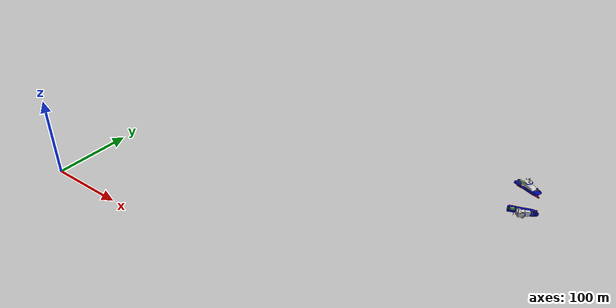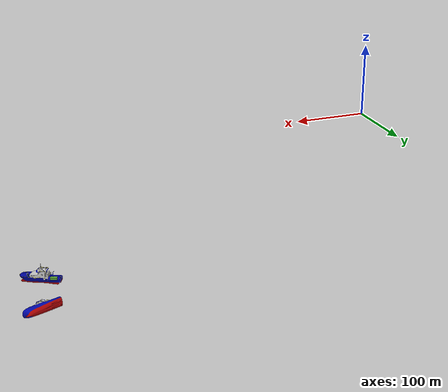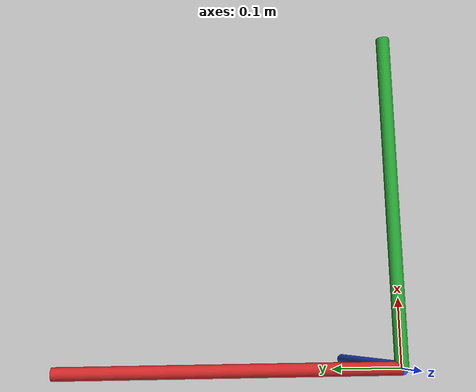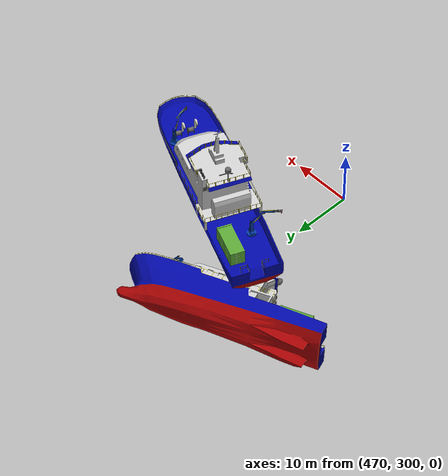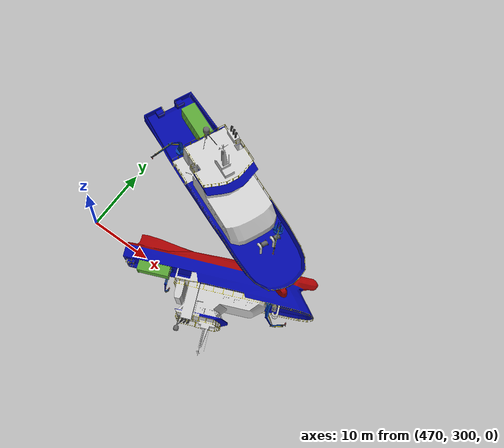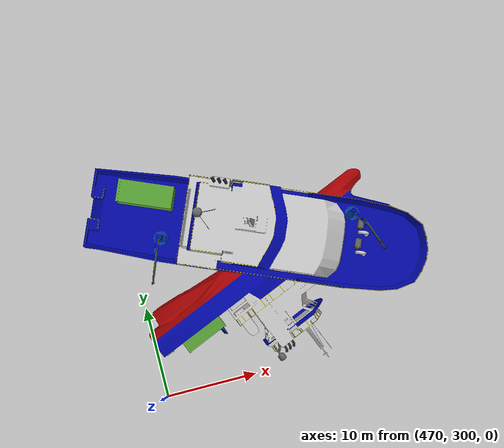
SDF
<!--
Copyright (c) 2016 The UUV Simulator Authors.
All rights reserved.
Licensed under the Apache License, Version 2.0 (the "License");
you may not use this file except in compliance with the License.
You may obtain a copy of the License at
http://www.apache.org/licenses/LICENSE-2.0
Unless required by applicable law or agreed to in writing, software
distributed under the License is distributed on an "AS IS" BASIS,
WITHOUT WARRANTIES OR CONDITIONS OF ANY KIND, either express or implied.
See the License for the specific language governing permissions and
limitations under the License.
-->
<sdf version="1.4">
 <world name="mangalia_manipulation">
  <physics name="default_physics" default="true" type="ode">
   <max_step_size>0.002</max_step_size>
   <real_time_factor>1</real_time_factor>
   <real_time_update_rate>500</real_time_update_rate>
   <ode><solver><type>quick</type><iters>50</iters><sor>0.7</sor></solver></ode>
  </physics>
  <scene>
   <ambient>0.01 0.01 0.01 1.0</ambient>
   <sky><clouds><speed>12</speed></clouds></sky>
   <shadows>1</shadows>
  </scene>
  <spherical_coordinates>
   <latitude_deg>43.802911</latitude_deg>
   <longitude_deg>28.591915</longitude_deg>
  </spherical_coordinates>
  <light type="directional" name="sun1">
   <pose>50 0 20 0 0 0</pose>
   <diffuse>1 1 1 1</diffuse>
   <specular>.1 .1 .1 1</specular>
   <direction>0.3 0.3 -1</direction>
  </light>
  <light type="directional" name="sun_diffuse_1">
   <pose>0 0 800 0 0 0</pose>
   <diffuse>0.6 0.6 0.6 1</diffuse>
   <specular>0 0 0 1</specular>
   <direction>-0.3 -0.3 -1</direction>
  </light>
  <light type="directional" name="sun_diffuse_2">
   <pose>-2000 50 800 0 0 0</pose>
   <diffuse>0.6 0.6 0.6 1</diffuse>
   <specular>0 0 0 1</specular>
   <direction>-0.3 -0.3 -1</direction>
  </light>
  <include><uri>model://ned_frame</uri></include>
  <include>
   <uri>model://aurora_static</uri>
   <pose>484.0 315.0 0.0 0.0 0.0 -0.4</pose>
   <name>aurora_swimming</name>
  </include>
  <include>
   <uri>model://aurora_static</uri>
   <pose>484.0 315.0 -30.0 1.7 0 0.4</pose>
   <name>aurora_sunken</name>
  </include>
  <plugin name="underwater_current_plugin" filename="libuuv_underwater_current_ros_plugin.so">
   <namespace>hydrodynamics</namespace>
   <constant_current>
    <topic>current_velocity</topic>
    <velocity><mean>0</mean><min>0</min><max>5</max><mu>0.0</mu><noiseAmp>0.0</noiseAmp></velocity>
    <horizontal_angle>
     <mean>0</mean>
     <min>-3.141592653589793238</min>
     <max>3.141592653589793238</max>
     <mu>0.0</mu>
     <noiseAmp>0.0</noiseAmp>
    </horizontal_angle>
    <vertical_angle>
     <mean>0</mean>
     <min>-3.141592653589793238</min>
     <max>3.141592653589793238</max>
     <mu>0.0</mu>
     <noiseAmp>0.0</noiseAmp>
    </vertical_angle>
   </constant_current>
  </plugin>
  <plugin name="sc_interface" filename="libuuv_sc_ros_interface_plugin.so"/>
 </world>
</sdf>

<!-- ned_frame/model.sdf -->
<sdf version='1.5'>
    <model name="world_aaa">

      <pose>0 0 0 0 0 0</pose>
      <static>true</static>

      <link name="world_aaa">
        <gravity>0</gravity>
        <pose>0 0 0 3.14159265359 0 1.5707963267948966</pose>

        <visual name="N_visual">
          <pose>0.25 0 0 1.5707963267948966 0 1.5707963267948966</pose>
          <geometry>
            <cylinder>
              <radius>0.01</radius>
              <length>0.5</length>
            </cylinder>
          </geometry>
          <material>
            <script>
              <uri>file://media/materials/scripts/gazebo.material</uri>
              <name>Gazebo/Red</name>
            </script>
          </material>
        </visual>

        <visual name="E_visual">
          <pose>0 0.25 0 1.5707963267948966 0 0</pose>
          <geometry>
            <cylinder>
              <radius>0.01</radius>
              <length>0.5</length>
            </cylinder>
          </geometry>
          <material>
            <script>
              <uri>file://media/materials/scripts/gazebo.material</uri>
              <name>Gazebo/Green</name>
            </script>
          </material>
        </visual>

        <visual name="D_visual">
          <pose>0 0 0.25 0 0 0</pose>
          <geometry>
            <cylinder>
              <radius>0.01</radius>
              <length>0.5</length>
            </cylinder>
          </geometry>
          <material>
            <script>
              <uri>file://media/materials/scripts/gazebo.material</uri>
              <name>Gazebo/Blue</name>
            </script>
          </material>
        </visual>
      </link>
    </model>
</sdf>

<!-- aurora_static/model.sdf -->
<sdf version="1.5">
  <model name="aurora">
    <static>true</static>
    <link name="link">
      <collision name="aurora_collision">
        <pose>0 0 0 0 0 1.57</pose>
        <geometry>
          <mesh><uri>model://aurora_static/meshes/aurora_collision.stl</uri></mesh>
        </geometry>
      </collision>

      <visual name="aurora_visual">
        <cast_shadows>false</cast_shadows>
        <pose>0 0 0 0 0 1.57</pose>
        <geometry>
          <mesh><uri>model://aurora_static/meshes/aurora.dae</uri></mesh>
        </geometry>
      </visual>
    </link>
  </model>
</sdf>
